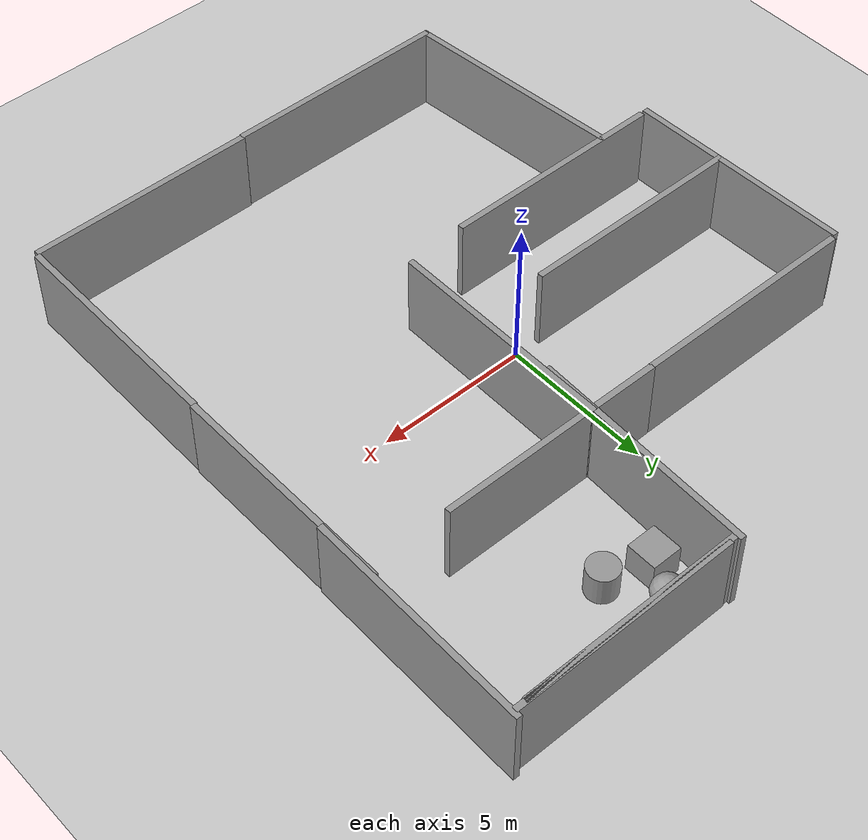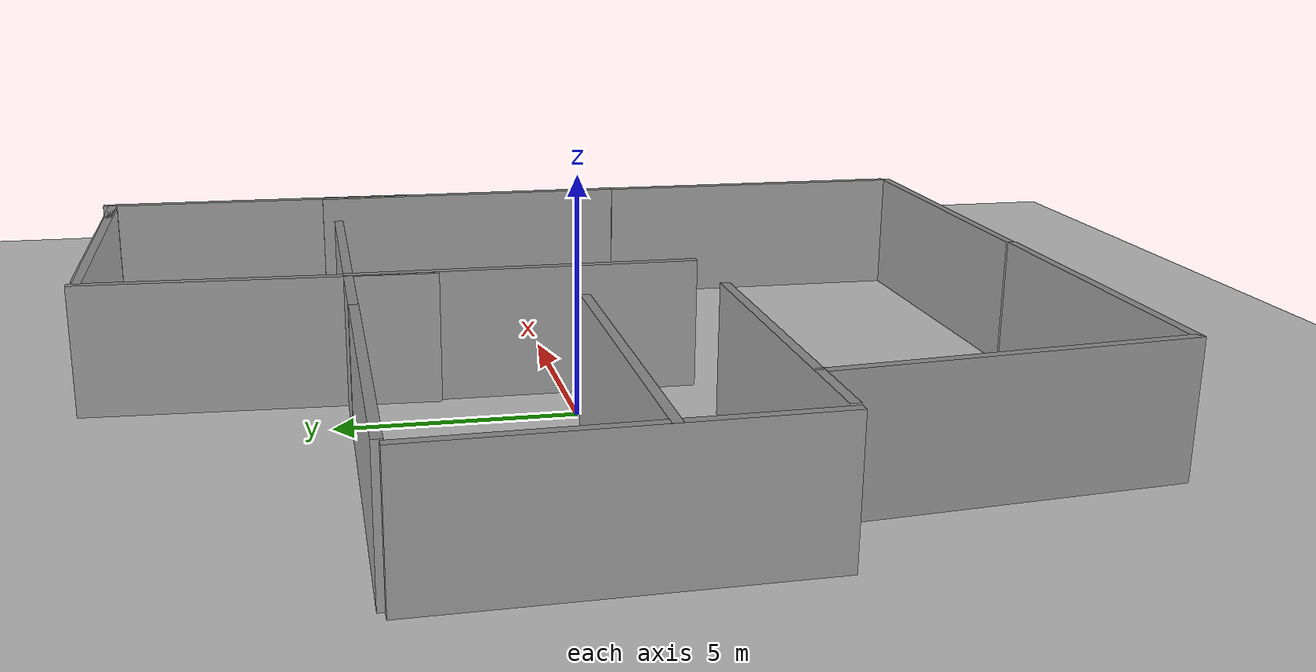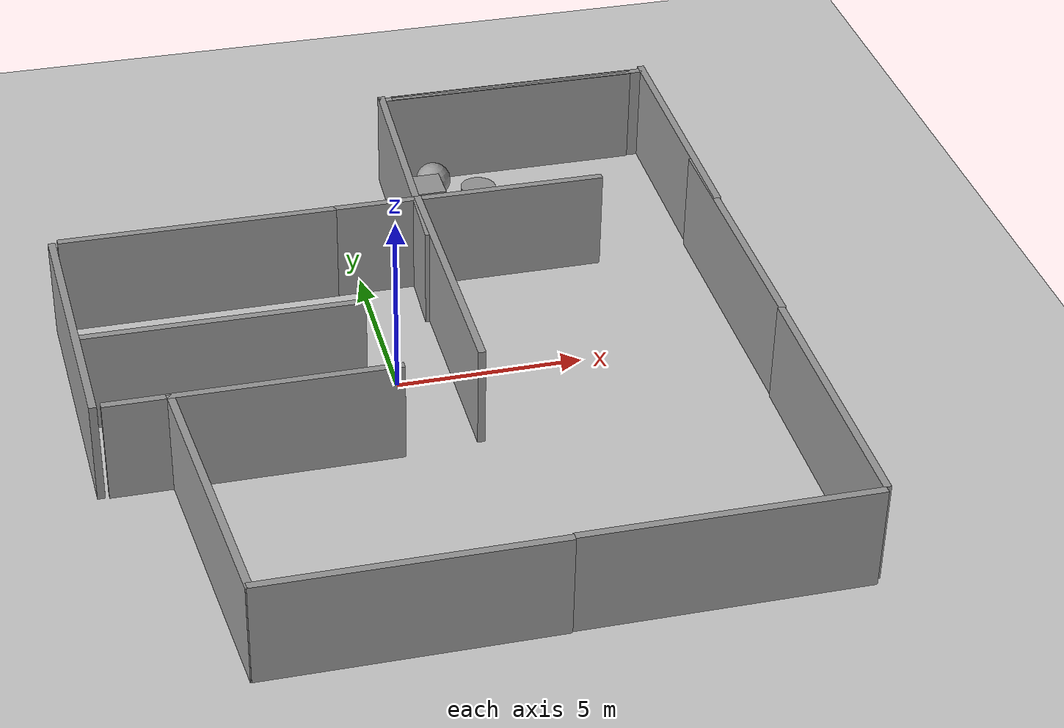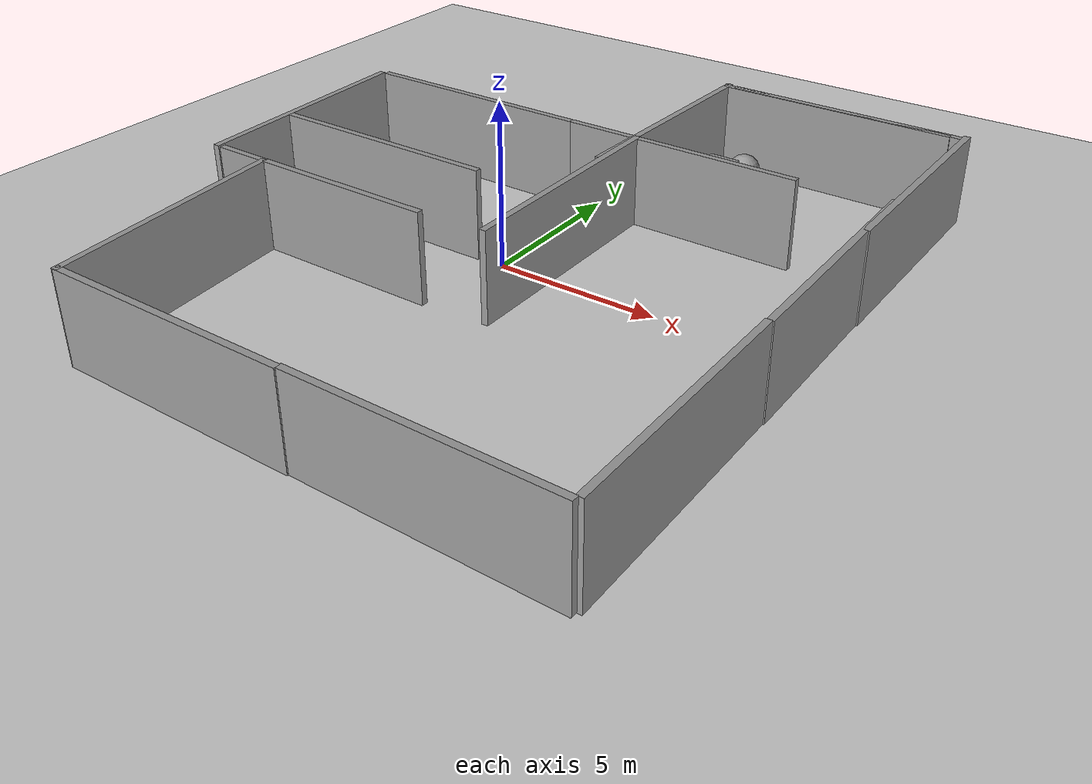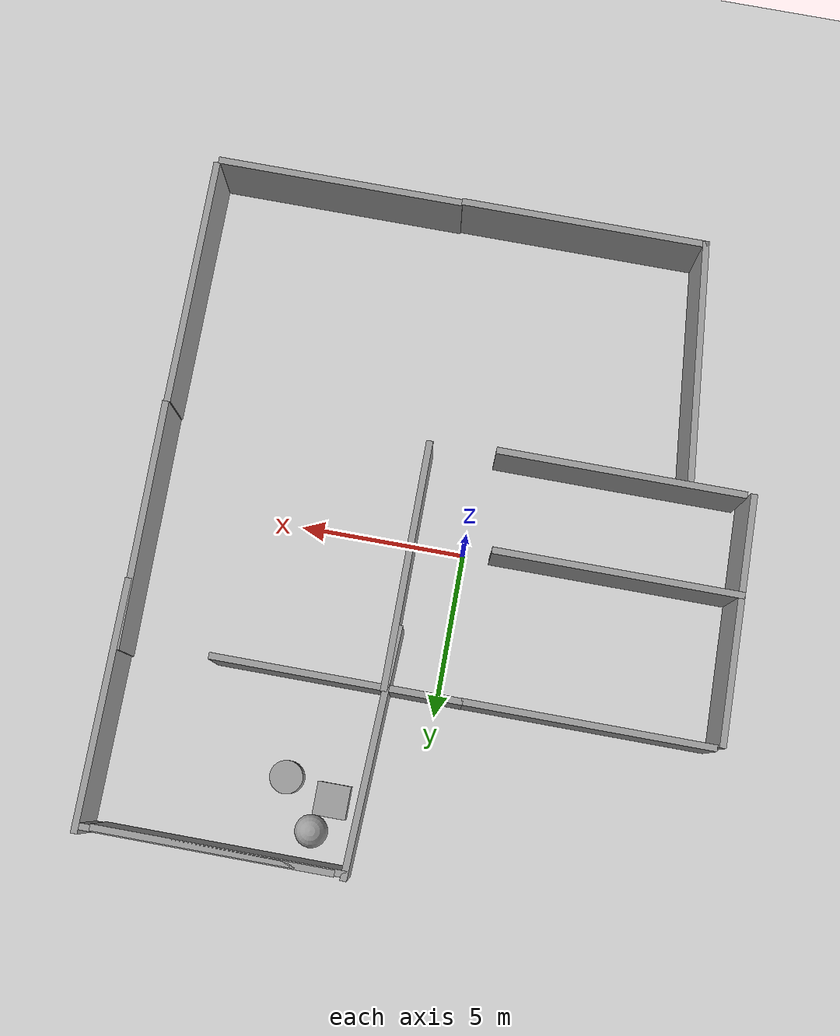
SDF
<sdf version="1.4">
 <world name="default">
  <light name="sun" type="directional">
   <pose>0 0 10 0 -0 0</pose>
   <diffuse>0.8 0.8 0.8 1</diffuse>
   <specular>0.2 0.2 0.2 1</specular>
   <attenuation>
    <range>1000</range>
    <constant>0.9</constant>
    <linear>0.01</linear>
    <quadratic>0.001</quadratic>
   </attenuation>
   <direction>-0.5 0.1 -0.9</direction>
  </light>
  <model name="ground_plane">
   <static>1</static>
   <link name="link">
    <collision name="collision">
     <geometry><plane><normal>0 0 1</normal><size>100 100</size></plane></geometry>
     <surface><friction><ode><mu>100</mu><mu2>50</mu2></ode></friction></surface>
    </collision>
    <visual name="visual">
     <cast_shadows>0</cast_shadows>
     <geometry><plane><normal>0 0 1</normal><size>100 100</size></plane></geometry>
     <material>
      <script><uri>file://media/materials/scripts/gazebo.material</uri><name>Gazebo/Grey</name></script>
     </material>
    </visual>
    <velocity_decay><linear>0</linear><angular>0</angular></velocity_decay>
   </link>
  </model>
  <physics type="ode">
   <max_step_size>0.001</max_step_size>
   <real_time_factor>1</real_time_factor>
   <real_time_update_rate>1000</real_time_update_rate>
   <gravity>0 0 -9.8</gravity>
  </physics>
  <scene><ambient>0.4 0.4 0.4 1</ambient><background>0.7 0.7 0.7 1</background><shadows>1</shadows></scene>
  <spherical_coordinates>
   <surface_model>EARTH_WGS84</surface_model>
   <latitude_deg>0</latitude_deg>
   <longitude_deg>0</longitude_deg>
   <elevation>0</elevation>
   <heading_deg>0</heading_deg>
  </spherical_coordinates>
  <model name="grey_wall">
   <static>1</static>
   <link name="link">
    <pose>0 0 1.4 0 -0 0</pose>
    <collision name="collision"><geometry><box><size>7.5 0.2 2.8</size></box></geometry></collision>
    <visual name="visual">
     <cast_shadows>0</cast_shadows>
     <geometry><box><size>7.5 0.2 2.8</size></box></geometry>
     <material>
      <script>
       <uri>model://grey_wall/materials/scripts</uri>
       <uri>model://grey_wall/materials/textures</uri>
       <name>vrc/grey_wall</name>
      </script>
     </material>
    </visual>
    <velocity_decay><linear>0</linear><angular>0</angular></velocity_decay>
   </link>
   <pose>-4.45669 4.51369 0 0 -0 0</pose>
  </model>
  <model name="grey_wall_0">
   <static>1</static>
   <link name="link">
    <pose>0 0 1.4 0 -0 0</pose>
    <collision name="collision"><geometry><box><size>7.5 0.2 2.8</size></box></geometry></collision>
    <visual name="visual">
     <cast_shadows>0</cast_shadows>
     <geometry><box><size>7.5 0.2 2.8</size></box></geometry>
     <material>
      <script>
       <uri>model://grey_wall/materials/scripts</uri>
       <uri>model://grey_wall/materials/textures</uri>
       <name>vrc/grey_wall</name>
      </script>
     </material>
    </visual>
    <velocity_decay><linear>0</linear><angular>0</angular></velocity_decay>
   </link>
   <pose>-4.17438 -2.94975 0 0 -0 0</pose>
  </model>
  <model name="grey_wall_1">
   <static>1</static>
   <link name="link">
    <pose>0 0 1.4 0 -0 0</pose>
    <collision name="collision"><geometry><box><size>7.5 0.2 2.8</size></box></geometry></collision>
    <visual name="visual">
     <cast_shadows>0</cast_shadows>
     <geometry><box><size>7.5 0.2 2.8</size></box></geometry>
     <material>
      <script>
       <uri>model://grey_wall/materials/scripts</uri>
       <uri>model://grey_wall/materials/textures</uri>
       <name>vrc/grey_wall</name>
      </script>
     </material>
    </visual>
    <velocity_decay><linear>0</linear><angular>0</angular></velocity_decay>
   </link>
   <pose>-8.24091 0.730795 0 0 0 -1.53854</pose>
  </model>
  <model name="grey_wall_2">
   <static>1</static>
   <link name="link">
    <pose>0 0 1.4 0 -0 0</pose>
    <collision name="collision"><geometry><box><size>7.5 0.2 2.8</size></box></geometry></collision>
    <visual name="visual">
     <cast_shadows>0</cast_shadows>
     <geometry><box><size>7.5 0.2 2.8</size></box></geometry>
     <material>
      <script>
       <uri>model://grey_wall/materials/scripts</uri>
       <uri>model://grey_wall/materials/textures</uri>
       <name>vrc/grey_wall</name>
      </script>
     </material>
    </visual>
    <velocity_decay><linear>0</linear><angular>0</angular></velocity_decay>
   </link>
   <pose>-4.55904 0 0 0 -0 0</pose>
  </model>
  <model name="grey_wall_3">
   <static>1</static>
   <link name="link">
    <pose>0 0 1.4 0 -0 0</pose>
    <collision name="collision"><geometry><box><size>7.5 0.2 2.8</size></box></geometry></collision>
    <visual name="visual">
     <cast_shadows>0</cast_shadows>
     <geometry><box><size>7.5 0.2 2.8</size></box></geometry>
     <material>
      <script>
       <uri>model://grey_wall/materials/scripts</uri>
       <uri>model://grey_wall/materials/textures</uri>
       <name>vrc/grey_wall</name>
      </script>
     </material>
    </visual>
    <velocity_decay><linear>0</linear><angular>0</angular></velocity_decay>
   </link>
   <pose>1.5653 0.874911 0.00212 0 0 -1.57102</pose>
  </model>
  <model name="grey_wall_6">
   <static>1</static>
   <link name="link">
    <pose>0 0 1.4 0 -0 0</pose>
    <collision name="collision"><geometry><box><size>7.5 0.2 2.8</size></box></geometry></collision>
    <visual name="visual">
     <cast_shadows>0</cast_shadows>
     <geometry><box><size>7.5 0.2 2.8</size></box></geometry>
     <material>
      <script>
       <uri>model://grey_wall/materials/scripts</uri>
       <uri>model://grey_wall/materials/textures</uri>
       <name>vrc/grey_wall</name>
      </script>
     </material>
    </visual>
    <velocity_decay><linear>0</linear><angular>0</angular></velocity_decay>
   </link>
   <pose>3 4.52028 0 0 -0 0</pose>
  </model>
  <model name="grey_wall_8">
   <static>1</static>
   <link name="link">
    <pose>0 0 1.4 0 -0 0</pose>
    <collision name="collision"><geometry><box><size>7.5 0.2 2.8</size></box></geometry></collision>
    <visual name="visual">
     <cast_shadows>0</cast_shadows>
     <geometry><box><size>7.5 0.2 2.8</size></box></geometry>
     <material>
      <script>
       <uri>model://grey_wall/materials/scripts</uri>
       <uri>model://grey_wall/materials/textures</uri>
       <name>vrc/grey_wall</name>
      </script>
     </material>
    </visual>
    <velocity_decay><linear>0</linear><angular>0</angular></velocity_decay>
   </link>
   <pose>-5.87203 -6.62713 0 0 0 -1.47433</pose>
  </model>
  <model name="grey_wall_9">
   <static>1</static>
   <link name="link">
    <pose>0 0 1.4 0 -0 0</pose>
    <collision name="collision"><geometry><box><size>7.5 0.2 2.8</size></box></geometry></collision>
    <visual name="visual">
     <cast_shadows>0</cast_shadows>
     <geometry><box><size>7.5 0.2 2.8</size></box></geometry>
     <material>
      <script>
       <uri>model://grey_wall/materials/scripts</uri>
       <uri>model://grey_wall/materials/textures</uri>
       <name>vrc/grey_wall</name>
      </script>
     </material>
    </visual>
    <velocity_decay><linear>0</linear><angular>0</angular></velocity_decay>
   </link>
   <pose>-1.82891 -10.2698 0 0 -0 0</pose>
  </model>
  <model name="grey_wall_10">
   <static>1</static>
   <link name="link">
    <pose>0 0 1.4 0 -0 0</pose>
    <collision name="collision"><geometry><box><size>7.5 0.2 2.8</size></box></geometry></collision>
    <visual name="visual">
     <cast_shadows>0</cast_shadows>
     <geometry><box><size>7.5 0.2 2.8</size></box></geometry>
     <material>
      <script>
       <uri>model://grey_wall/materials/scripts</uri>
       <uri>model://grey_wall/materials/textures</uri>
       <name>vrc/grey_wall</name>
      </script>
     </material>
    </visual>
    <velocity_decay><linear>0</linear><angular>0</angular></velocity_decay>
   </link>
   <pose>5.64672 -10.2304 0 0 -0 0</pose>
  </model>
  <model name="grey_wall_4">
   <static>1</static>
   <link name="link">
    <pose>0 0 1.4 0 -0 0</pose>
    <collision name="collision"><geometry><box><size>7.5 0.2 2.8</size></box></geometry></collision>
    <visual name="visual">
     <cast_shadows>0</cast_shadows>
     <geometry><box><size>7.5 0.2 2.8</size></box></geometry>
     <material>
      <script>
       <uri>model://grey_wall/materials/scripts</uri>
       <uri>model://grey_wall/materials/textures</uri>
       <name>vrc/grey_wall</name>
      </script>
     </material>
    </visual>
    <velocity_decay><linear>0</linear><angular>0</angular></velocity_decay>
   </link>
   <pose>9.43706 -6.39874 0 0 -0 1.56794</pose>
  </model>
  <model name="grey_wall_7">
   <static>1</static>
   <link name="link">
    <pose>0 0 1.4 0 -0 0</pose>
    <collision name="collision"><geometry><box><size>7.5 0.2 2.8</size></box></geometry></collision>
    <visual name="visual">
     <cast_shadows>0</cast_shadows>
     <geometry><box><size>7.5 0.2 2.8</size></box></geometry>
     <material>
      <script>
       <uri>model://grey_wall/materials/scripts</uri>
       <uri>model://grey_wall/materials/textures</uri>
       <name>vrc/grey_wall</name>
      </script>
     </material>
    </visual>
    <velocity_decay><linear>0</linear><angular>0</angular></velocity_decay>
   </link>
   <pose>1.58268 6.39809 0 0 -0 1.53553</pose>
  </model>
  <model name="grey_wall_12">
   <static>1</static>
   <link name="link">
    <pose>0 0 1.4 0 -0 0</pose>
    <collision name="collision"><geometry><box><size>7.5 0.2 2.8</size></box></geometry></collision>
    <visual name="visual">
     <cast_shadows>0</cast_shadows>
     <geometry><box><size>7.5 0.2 2.8</size></box></geometry>
     <material>
      <script>
       <uri>model://grey_wall/materials/scripts</uri>
       <uri>model://grey_wall/materials/textures</uri>
       <name>vrc/grey_wall</name>
      </script>
     </material>
    </visual>
    <velocity_decay><linear>0</linear><angular>0</angular></velocity_decay>
   </link>
   <pose>9.46487 1.08318 0 0 -0 1.57543</pose>
  </model>
  <model name="unit_sphere_1">
   <pose>3 9 0.5 0 -0 0</pose>
   <link name="link">
    <inertial>
     <mass>1</mass>
     <inertia><ixx>1</ixx><ixy>0</ixy><ixz>0</ixz><iyy>1</iyy><iyz>0</iyz><izz>1</izz></inertia>
    </inertial>
    <collision name="collision"><geometry><sphere><radius>0.5</radius></sphere></geometry></collision>
    <visual name="visual">
     <geometry><sphere><radius>0.5</radius></sphere></geometry>
     <material>
      <script><uri>file://media/materials/scripts/gazebo.material</uri><name>Gazebo/Grey</name></script>
     </material>
    </visual>
    <velocity_decay><linear>0</linear><angular>0</angular></velocity_decay>
   </link>
   <static>0</static>
  </model>
  <model name="unit_box_1">
   <pose>2.54501 8 0.5 0 -0 0</pose>
   <link name="link">
    <inertial>
     <mass>1</mass>
     <inertia><ixx>1</ixx><ixy>0</ixy><ixz>0</ixz><iyy>1</iyy><iyz>0</iyz><izz>1</izz></inertia>
    </inertial>
    <collision name="collision"><geometry><box><size>1 1 1</size></box></geometry></collision>
    <visual name="visual">
     <geometry><box><size>1 1 1</size></box></geometry>
     <material>
      <script><uri>file://media/materials/scripts/gazebo.material</uri><name>Gazebo/Grey</name></script>
     </material>
    </visual>
    <velocity_decay><linear>0</linear><angular>0</angular></velocity_decay>
   </link>
   <static>0</static>
  </model>
  <model name="unit_cylinder_1">
   <pose>4 7.56243 0.499998 -0 -0 -0</pose>
   <link name="link">
    <inertial>
     <mass>1</mass>
     <inertia><ixx>1</ixx><ixy>0</ixy><ixz>0</ixz><iyy>1</iyy><iyz>0</iyz><izz>1</izz></inertia>
    </inertial>
    <collision name="collision">
     <geometry><cylinder><radius>0.5</radius><length>1</length></cylinder></geometry>
    </collision>
    <visual name="visual">
     <geometry><cylinder><radius>0.5</radius><length>1</length></cylinder></geometry>
     <material>
      <script><uri>file://media/materials/scripts/gazebo.material</uri><name>Gazebo/Grey</name></script>
     </material>
    </visual>
    <velocity_decay><linear>0</linear><angular>0</angular></velocity_decay>
   </link>
   <static>0</static>
  </model>
  <model name="grey_wall_5">
   <static>1</static>
   <link name="link">
    <pose>0 0 1.4 0 -0 0</pose>
    <collision name="collision"><geometry><box><size>7.5 0.2 2.8</size></box></geometry></collision>
    <visual name="visual">
     <cast_shadows>0</cast_shadows>
     <geometry><box><size>7.5 0.2 2.8</size></box></geometry>
     <material>
      <script>
       <uri>model://grey_wall/materials/scripts</uri>
       <uri>model://grey_wall/materials/textures</uri>
       <name>vrc/grey_wall</name>
      </script>
     </material>
    </visual>
    <velocity_decay><linear>0</linear><angular>0</angular></velocity_decay>
   </link>
   <pose>5.74605 9.98302 0 0 -0 0</pose>
  </model>
  <model name="grey_wall_11">
   <static>1</static>
   <link name="link">
    <pose>0 0 1.4 0 -0 0</pose>
    <collision name="collision"><geometry><box><size>7.5 0.2 2.8</size></box></geometry></collision>
    <visual name="visual">
     <cast_shadows>0</cast_shadows>
     <geometry><box><size>7.5 0.2 2.8</size></box></geometry>
     <material>
      <script>
       <uri>model://grey_wall/materials/scripts</uri>
       <uri>model://grey_wall/materials/textures</uri>
       <name>vrc/grey_wall</name>
      </script>
     </material>
    </visual>
    <velocity_decay><linear>0</linear><angular>0</angular></velocity_decay>
   </link>
   <pose>9.52535 6.46526 0 0 -0 1.56348</pose>
  </model>
  <model name="grey_wall_13">
   <static>1</static>
   <link name="link">
    <pose>0 0 1.4 0 -0 0</pose>
    <collision name="collision"><geometry><box><size>7.5 0.2 2.8</size></box></geometry></collision>
    <visual name="visual">
     <cast_shadows>0</cast_shadows>
     <geometry><box><size>7.5 0.2 2.8</size></box></geometry>
     <material>
      <script>
       <uri>model://grey_wall/materials/scripts</uri>
       <uri>model://grey_wall/materials/textures</uri>
       <name>vrc/grey_wall</name>
      </script>
     </material>
    </visual>
    <velocity_decay><linear>0</linear><angular>0</angular></velocity_decay>
   </link>
   <pose>5.38766 9.95149 0 0 -0 0</pose>
  </model>
 </world>
</sdf>
